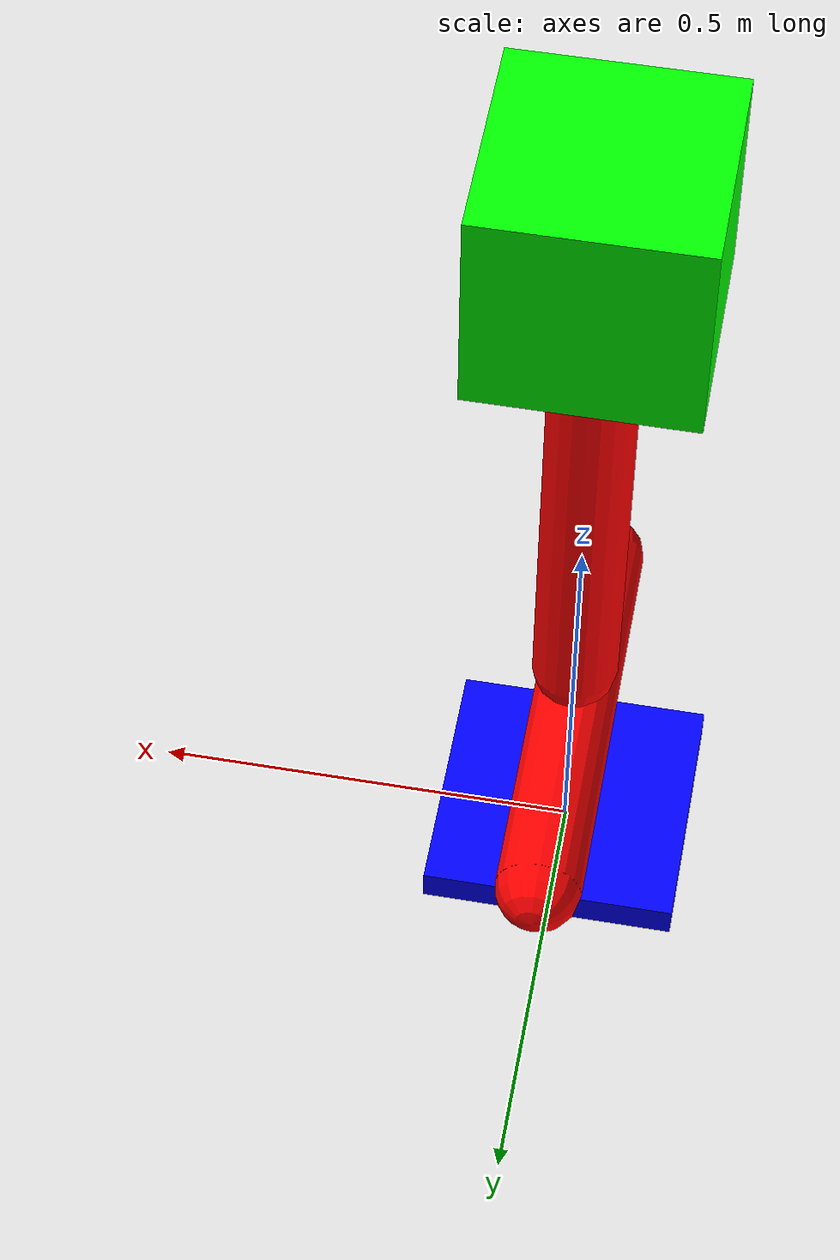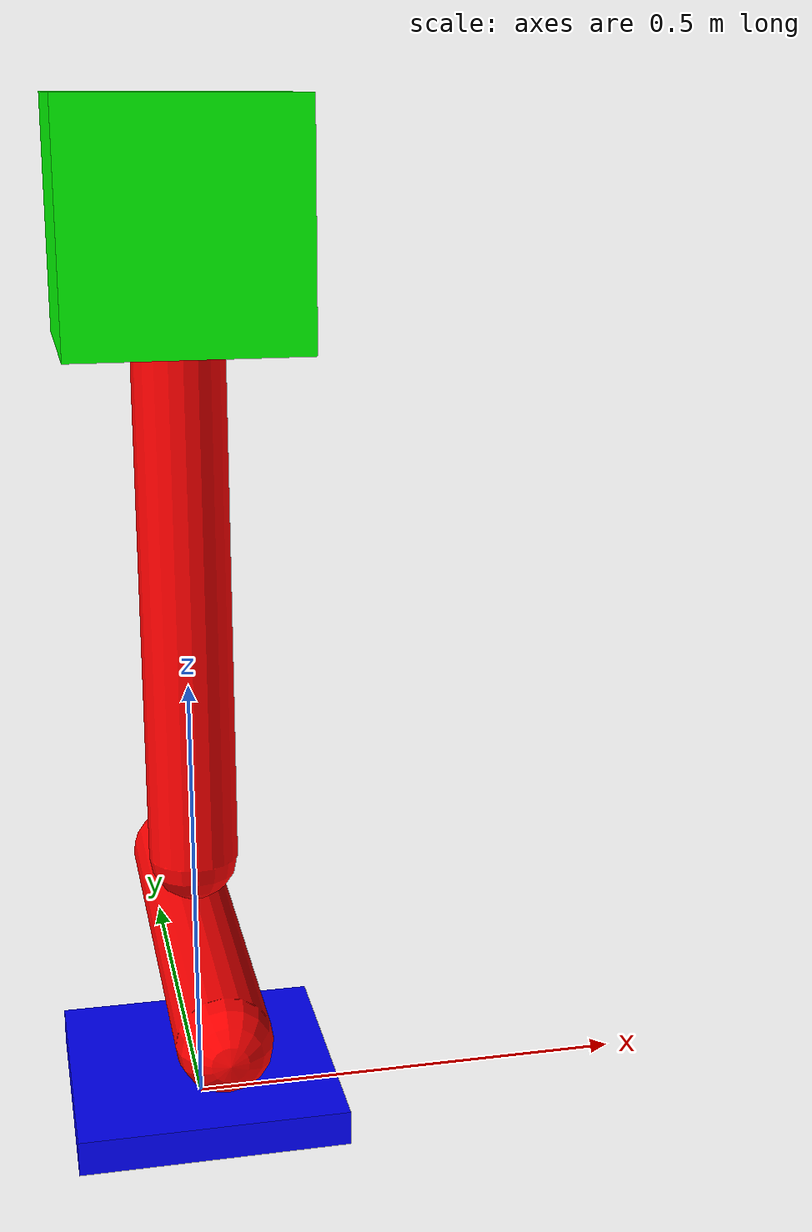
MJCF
<mujoco model="pendulumboard">
   <statistic extent="2" center="0 0 1"/>

  <default>
    <motor ctrlrange="-1 1" ctrllimited="true"/>
    <site size=".04" group="3"/>
    <default class="body">
      <!-- tracking site -->
      <default class="tracking_site">
        <site type="sphere" size="0.027" rgba="1 0 0 1" group="3"/>
      </default>
      <joint type="hinge" damping=".2" stiffness="1" armature=".01" limited="true" solimplimit="0 .99 .01"/>
    </default>
  </default>
  <worldbody>

    <body name="pendulum_root" pos="0 0 0">
      <freejoint name="root"/>
      <body name="pendulum_center">
        <geom name="pendulum_root_geom" pos="0 0 0.02" size="0.15 0.15 0.02" type="box" rgba="0 0 1 1"/>
      </body>
      <!-- horizontal capsule below the front_capsule for tipping -->
      <body name="horizontal_capsule">
        <joint name="horizontal_capsule" type="hinge" axis="0 1 0" range="-0.1 0.1" limited="true"/>
        <geom name="horizontal_geom_capsule" fromto="0 -0.25 0.2 0 0.25 0.2" size="0.05" type="capsule" rgba="1 0 0 1"/>
        <body name="front_capsule">
          <joint name="front_capsule" type="hinge" axis="1 0 0" range="-45 45" limited="true"/>
          <geom name="front_geom_capsule" fromto="0 0 0.3 0 0 1" size="0.05" type="capsule" rgba="1 0 0 1" mass="0"/>
          <body name="cube">
            <geom name="cube_geom" pos="0 0 1" size="0.125 0.125 0.125" type="box" rgba="0 1 0 1" mass="4.8"/>
          </body>
        </body>
      </body>
    </body>
  </worldbody>
  <actuator>
    <motor joint="front_capsule" ctrlrange="-1.0 1.0" gear="200" ctrllimited="true"/>
    <motor joint="horizontal_capsule" ctrlrange="-1.0 1.0" gear="200" ctrllimited="true"/>
  </actuator>
   <contact>
        <exclude body1="pendulum_root" body2="horizontal_capsule"/>
        <exclude body1="pendulum_root" body2="front_capsule"/>
        <exclude body1="pendulum_root" body2="cube"/>
        <exclude body1="horizontal_capsule" body2="front_capsule"/>
        <exclude body1="horizontal_capsule" body2="cube"/>
        <exclude body1="front_capsule" body2="cube"/>
    </contact>

</mujoco>
